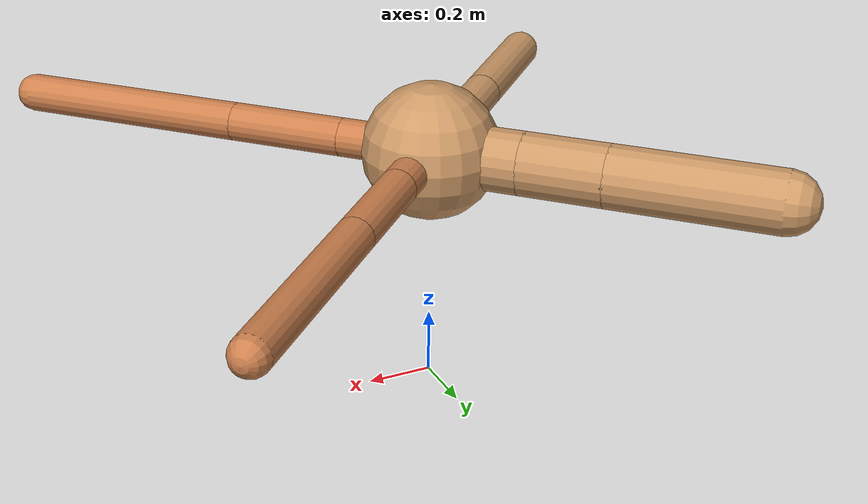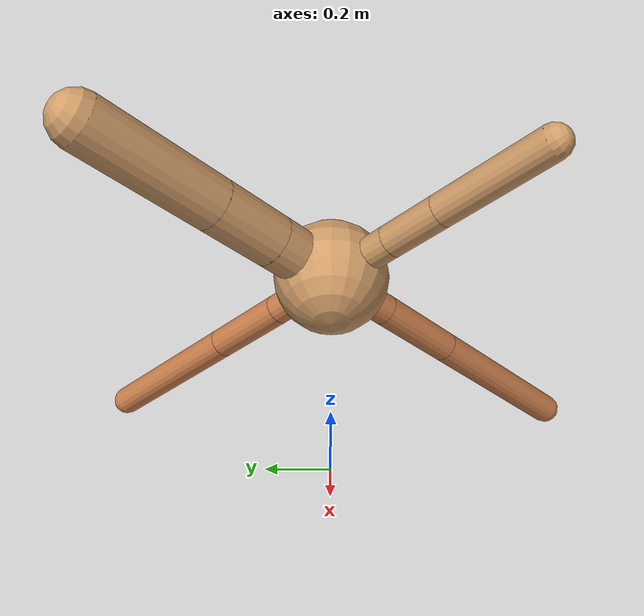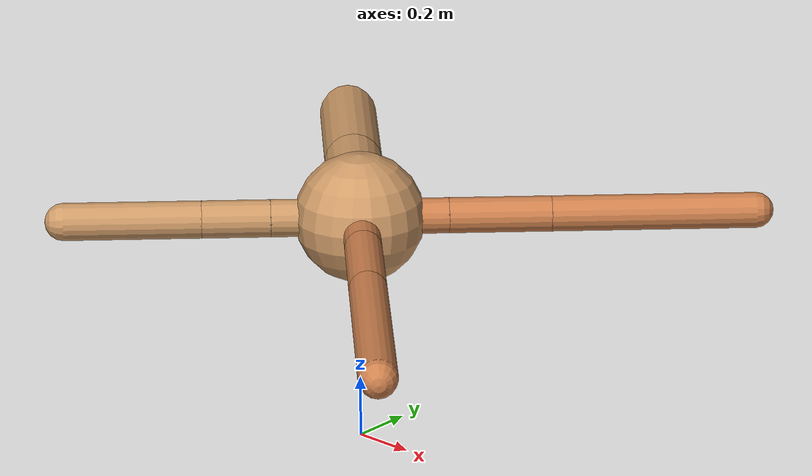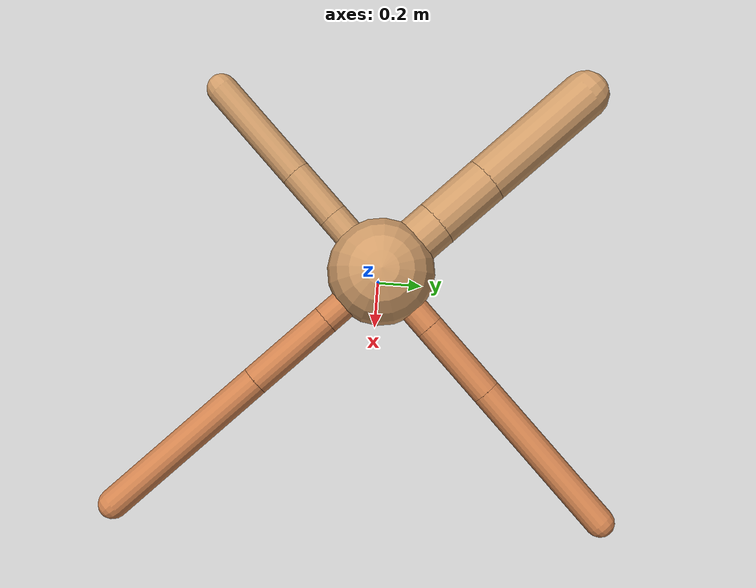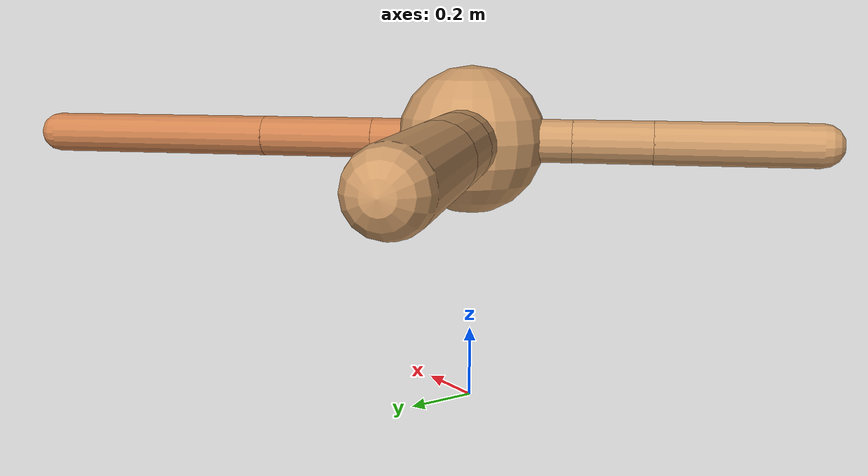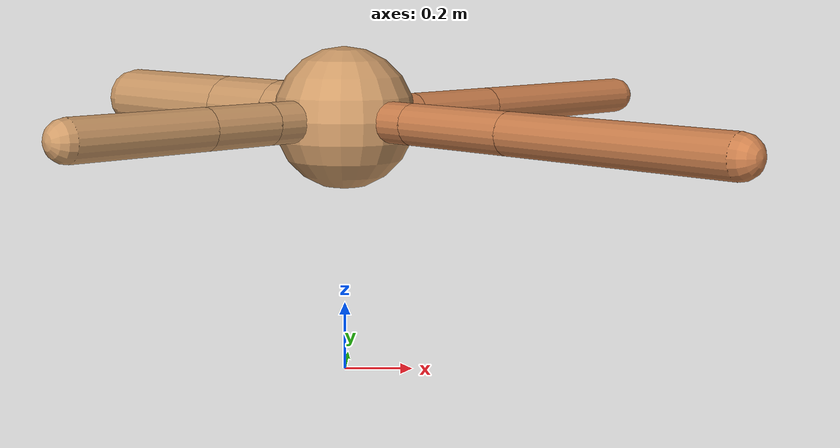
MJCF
<?xml version="1.0" ?>
<mujoco model="ant">

	<compiler angle="degree" coordinate="local" inertiafromgeom="true"/>

	<option integrator="RK4" timestep="0.01"/>

	<custom>

		<numeric data="0.0 0.0 0.55 1.0 0.0 0.0 0.0 0.0 1.0 0.0 -1.0 0.0 -1.0 0.0 1.0" name="init_qpos"/>

	</custom>

	<default>

		<joint armature="1" damping="1" limited="true"/>

		<geom conaffinity="0" condim="3" density="5.0" friction="1.5 0.1 0.1" margin="0.01" rgba="0.8 0.6 0.4 1"/>

	</default>

	<worldbody>

		<body name="torso" pos="0 0 0.75">

			<geom name="torso_geom" pos="0 0 0" size="0.20799245224300617" type="sphere"/>

			<!--joint armature="0" damping="0" limited="false" margin="0.01" name="root" pos="0 0 0" type="free"/-->

			<body name="front_left_leg" pos="0 0 0">

				<geom fromto="0 0 0 0.2 0.2 0" name="aux_1_geom" size="0.057033703716786406" type="capsule" rgba=".8 .5 .3 1"/>

				<body name="aux_1" pos="0.2 0.2 0">

					<joint axis="0 0 1" name="hip_1" pos="0.0 0.0 0.0" range="-40 40" type="hinge"/>

					<geom fromto="0 0 0 0.23109314160846797 0.23109314160846797 0" name="left_leg_geom" size="0.057033703716786406" type="capsule" rgba=".8 .5 .3 1"/>

					<body pos="0.23109314160846797 0.23109314160846797 0" name="front_left_foot">

						<joint axis="-1 1 0" name="ankle_1" pos="0.0 0.0 0.0" range="30 100" type="hinge"/>

						<geom fromto="0 0 0 0.46218628321693594 0.46218628321693594 0" name="left_ankle_geom" size="0.057033703716786406" type="capsule" rgba=".8 .5 .3 1"/>

					</body>

				</body>

			</body>

			<body name="front_right_leg" pos="0 0 0">

				<geom fromto="0 0 0 -0.2 0.2 0" name="aux_2_geom" size="0.09551209125713457" type="capsule"/>

				<body name="aux_2" pos="-0.2 0.2 0">

					<joint axis="0 0 1" name="hip_2" pos="0.0 0.0 0.0" range="-40 40" type="hinge"/>

					<geom fromto="0 0 0 -0.17938293090951093 0.17938293090951093 0" name="right_leg_geom" size="0.09551209125713457" type="capsule"/>

					<body pos="-0.17938293090951093 0.17938293090951093 0" name="front_right_foot">

						<joint axis="1 1 0" name="ankle_2" pos="0.0 0.0 0.0" range="-100 -30" type="hinge"/>

						<geom fromto="0 0 0 -0.35876586181902187 0.35876586181902187 0" name="right_ankle_geom" size="0.09551209125713457" type="capsule"/>

					</body>

				</body>

			</body>

			<body name="left_back_leg" pos="0 0 0">

				<geom fromto="0 0 0 -0.2 -0.2 0" name="aux_3_geom" size="0.060166891274957994" type="capsule"/>

				<body name="aux_3" pos="-0.2 -0.2 0">

					<joint axis="0 0 1" name="hip_3" pos="0.0 0.0 0.0" range="-40 40" type="hinge"/>

					<geom fromto="0 0 0 -0.15433788904809068 -0.15433788904809068 0" name="back_leg_geom" size="0.060166891274957994" type="capsule"/>

					<body pos="-0.15433788904809068 -0.15433788904809068 0" name="left_back_foot">

						<joint axis="-1 1 0" name="ankle_3" pos="0.0 0.0 0.0" range="-100 -30" type="hinge"/>

						<geom fromto="0 0 0 -0.30867577809618135 -0.30867577809618135 0" name="third_ankle_geom" size="0.060166891274957994" type="capsule"/>

					</body>

				</body>

			</body>

			<body name="right_back_leg" pos="0 0 0">

				<geom fromto="0 0 0 0.2 -0.2 0" name="aux_4_geom" size="0.058849975631776345" type="capsule" rgba=".8 .5 .3 1"/>

				<body name="aux_4" pos="0.2 -0.2 0">

					<joint axis="0 0 1" name="hip_4" pos="0.0 0.0 0.0" range="-40 40" type="hinge"/>

					<geom fromto="0 0 0 0.25081852392555287 -0.25081852392555287 0" name="rightback_leg_geom" size="0.058849975631776345" type="capsule" rgba=".8 .5 .3 1"/>

					<body pos="0.25081852392555287 -0.25081852392555287 0" name="right_back_foot">

						<joint axis="1 1 0" name="ankle_4" pos="0.0 0.0 0.0" range="30 100" type="hinge"/>

						<geom fromto="0 0 0 0.5016370478511057 -0.5016370478511057 0" name="fourth_ankle_geom" size="0.058849975631776345" type="capsule" rgba=".8 .5 .3 1"/>

					</body>

				</body>

			</body>

		</body>

	</worldbody>

	<actuator>

		<motor ctrllimited="true" ctrlrange="-1.0 1.0" joint="hip_4" gear="150"/>

		<motor ctrllimited="true" ctrlrange="-1.0 1.0" joint="ankle_4" gear="150"/>

		<motor ctrllimited="true" ctrlrange="-1.0 1.0" joint="hip_1" gear="150"/>

		<motor ctrllimited="true" ctrlrange="-1.0 1.0" joint="ankle_1" gear="150"/>

		<motor ctrllimited="true" ctrlrange="-1.0 1.0" joint="hip_2" gear="150"/>

		<motor ctrllimited="true" ctrlrange="-1.0 1.0" joint="ankle_2" gear="150"/>

		<motor ctrllimited="true" ctrlrange="-1.0 1.0" joint="hip_3" gear="150"/>

		<motor ctrllimited="true" ctrlrange="-1.0 1.0" joint="ankle_3" gear="150"/>

	</actuator>

</mujoco>
